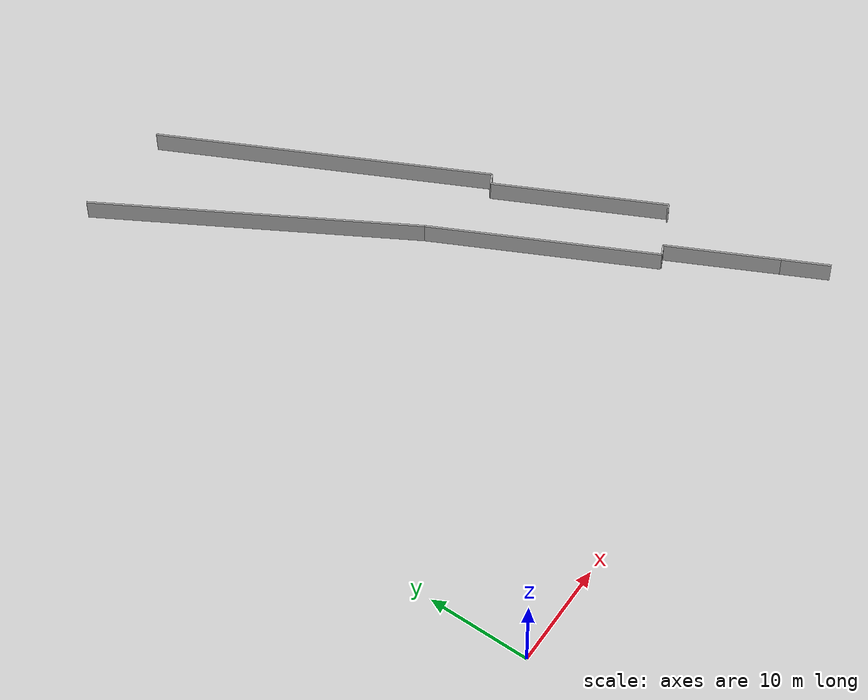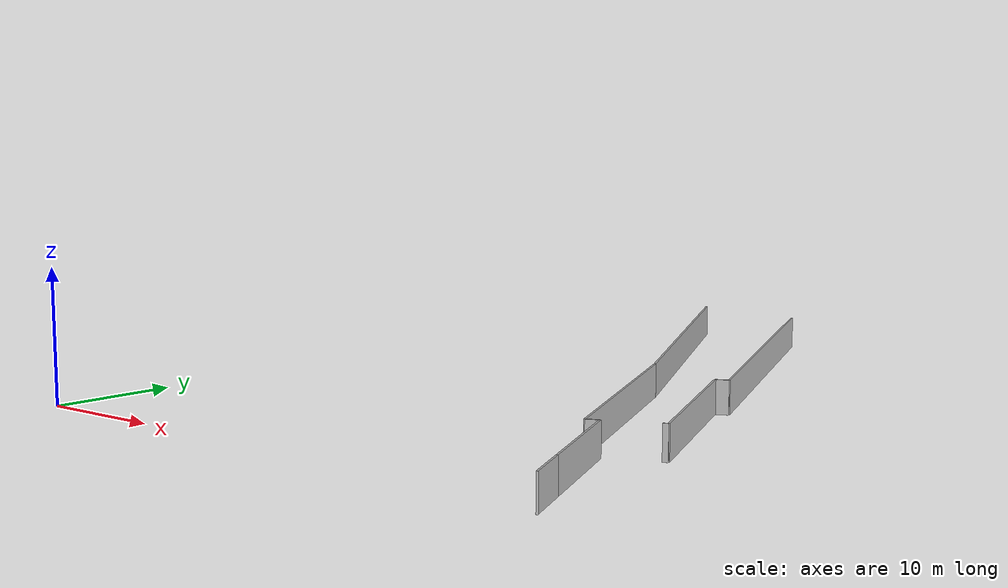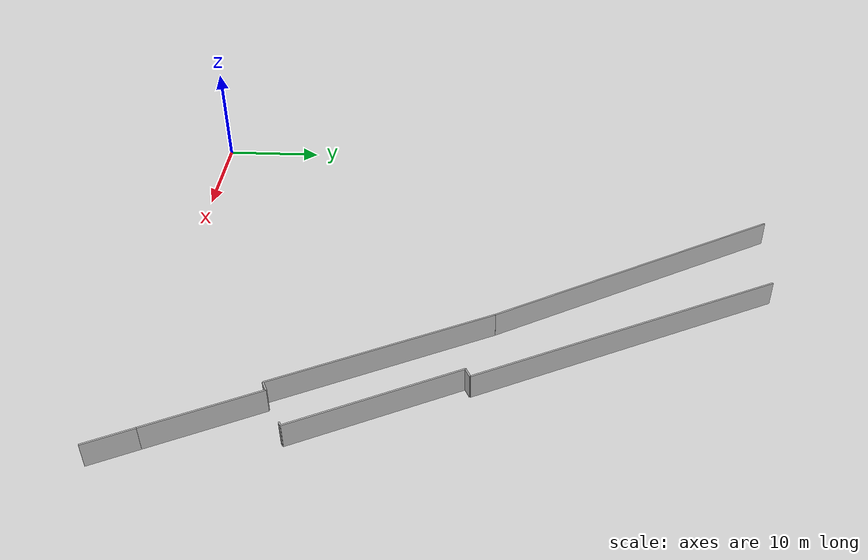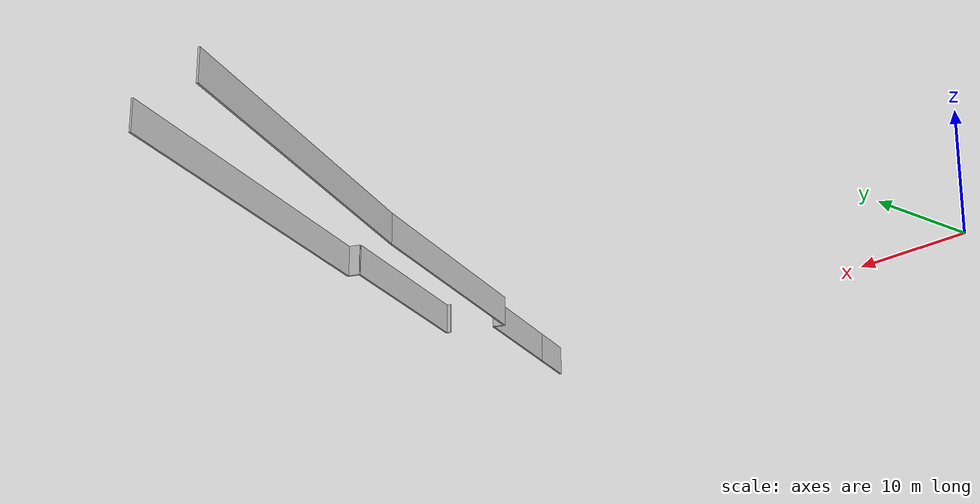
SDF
<?xml version="1.0" ?>
<sdf version="1.6">
  <model name="sps_0801">
    <pose frame="">0 0 0 0 -0 0</pose>
    <static>1</static>
    <self_collide>0</self_collide>
    <allow_auto_disable>0</allow_auto_disable>
    <link name="Wall1082">
      <kinematic>0</kinematic>
      <gravity>1</gravity>
      <self_collide>0</self_collide>
      <collision name="collision">
        <geometry>
          <box>
            <size>4.57327 0.15 2.5</size>
          </box>
        </geometry>
        <pose frame="">0 0 0 0 -0 0</pose>
      </collision>
      <visual name="visual">
        <geometry>
          <box>
            <size>4.57327 0.15 2.5</size>
          </box>
        </geometry>
        <pose frame="">0 0 0 0 -0 0</pose>
        <cast_shadows>1</cast_shadows>
        <transparency>0.0</transparency>
      </visual>
      <pose frame="">46.2042 0.322493 1.25 0 -0 2.02756</pose>
    </link>
    <link name="Wall1083">
      <kinematic>0</kinematic>
      <gravity>1</gravity>
      <self_collide>0</self_collide>
      <collision name="collision">
        <geometry>
          <box>
            <size>10.8125 0.15 2.5</size>
          </box>
        </geometry>
        <pose frame="">0 0 0 0 -0 0</pose>
      </collision>
      <visual name="visual">
        <geometry>
          <box>
            <size>10.8125 0.15 2.5</size>
          </box>
        </geometry>
        <pose frame="">0 0 0 0 -0 0</pose>
        <cast_shadows>1</cast_shadows>
        <transparency>0.0</transparency>
      </visual>
      <pose frame="">42.8105 7.22639 1.25 0 -0 2.0277</pose>
    </link>
    <link name="Wall1084">
      <kinematic>0</kinematic>
      <gravity>1</gravity>
      <self_collide>0</self_collide>
      <collision name="collision">
        <geometry>
          <box>
            <size>0.999428 0.15 2.5</size>
          </box>
        </geometry>
        <pose frame="">0 0 0 0 -0 0</pose>
      </collision>
      <visual name="visual">
        <geometry>
          <box>
            <size>0.999428 0.15 2.5</size>
          </box>
        </geometry>
        <pose frame="">0 0 0 0 -0 0</pose>
        <cast_shadows>1</cast_shadows>
        <transparency>0.0</transparency>
      </visual>
      <pose frame="">39.977 11.8575 1.25 0 0 -2.68442</pose>
    </link>
    <link name="Wall1085">
      <kinematic>0</kinematic>
      <gravity>1</gravity>
      <self_collide>0</self_collide>
      <collision name="collision">
        <geometry>
          <box>
            <size>21.8095 0.15 2.5</size>
          </box>
        </geometry>
        <pose frame="">0 0 0 0 -0 0</pose>
      </collision>
      <visual name="visual">
        <geometry>
          <box>
            <size>21.8095 0.15 2.5</size>
          </box>
        </geometry>
        <pose frame="">0 0 0 0 -0 0</pose>
        <cast_shadows>1</cast_shadows>
        <transparency>0.0</transparency>
      </visual>
      <pose frame="">34.7176 21.423 1.25 0 -0 2.02771</pose>
    </link>
    <link name="Wall1086">
      <kinematic>0</kinematic>
      <gravity>1</gravity>
      <self_collide>0</self_collide>
      <collision name="collision">
        <geometry>
          <box>
            <size>31.141 0.15 2.5</size>
          </box>
        </geometry>
        <pose frame="">0 0 0 0 -0 0</pose>
      </collision>
      <visual name="visual">
        <geometry>
          <box>
            <size>31.141 0.15 2.5</size>
          </box>
        </geometry>
        <pose frame="">0 0 0 0 -0 0</pose>
        <cast_shadows>1</cast_shadows>
        <transparency>0.0</transparency>
      </visual>
      <pose frame="">22.2425 44.7628 1.25 0 -0 2.08543</pose>
    </link>
    <link name="Wall1108">
      <kinematic>0</kinematic>
      <gravity>1</gravity>
      <self_collide>0</self_collide>
      <collision name="collision">
        <geometry>
          <box>
            <size>31.4311 0.15 2.5</size>
          </box>
        </geometry>
        <pose frame="">0 0 0 0 -0 0</pose>
      </collision>
      <visual name="visual">
        <geometry>
          <box>
            <size>31.4311 0.15 2.5</size>
          </box>
        </geometry>
        <pose frame="">0 0 0 0 -0 0</pose>
        <cast_shadows>1</cast_shadows>
        <transparency>0.0</transparency>
      </visual>
      <pose frame="">31.0781 43.336 1.25 0 0 -1.11389</pose>
    </link>
    <link name="Wall1109">
      <kinematic>0</kinematic>
      <gravity>1</gravity>
      <self_collide>0</self_collide>
      <collision name="collision">
        <geometry>
          <box>
            <size>1 0.15 2.5</size>
          </box>
        </geometry>
        <pose frame="">0 0 0 0 -0 0</pose>
      </collision>
      <visual name="visual">
        <geometry>
          <box>
            <size>1 0.15 2.5</size>
          </box>
        </geometry>
        <pose frame="">0 0 0 0 -0 0</pose>
        <cast_shadows>1</cast_shadows>
        <transparency>0.0</transparency>
      </visual>
      <pose frame="">37.5627 29.0119 1.25 0 0 -2.68463</pose>
    </link>
    <link name="Wall1110">
      <kinematic>0</kinematic>
      <gravity>1</gravity>
      <self_collide>0</self_collide>
      <collision name="collision">
        <geometry>
          <box>
            <size>16.4591 0.15 2.5</size>
          </box>
        </geometry>
        <pose frame="">0 0 0 0 -0 0</pose>
      </collision>
      <visual name="visual">
        <geometry>
          <box>
            <size>16.4591 0.15 2.5</size>
          </box>
        </geometry>
        <pose frame="">0 0 0 0 -0 0</pose>
        <cast_shadows>1</cast_shadows>
        <transparency>0.0</transparency>
      </visual>
      <pose frame="">40.7441 21.4056 1.25 0 0 -1.11397</pose>
    </link>
    <link name="Wall1111">
      <kinematic>0</kinematic>
      <gravity>1</gravity>
      <self_collide>0</self_collide>
      <collision name="collision">
        <geometry>
          <box>
            <size>0.399235 0.15 2.5</size>
          </box>
        </geometry>
        <pose frame="">0 0 0 0 -0 0</pose>
      </collision>
      <visual name="visual">
        <geometry>
          <box>
            <size>0.399235 0.15 2.5</size>
          </box>
        </geometry>
        <pose frame="">0 0 0 0 -0 0</pose>
        <cast_shadows>1</cast_shadows>
        <transparency>0.0</transparency>
      </visual>
      <pose frame="">44.1952 13.9317 1.25 0 0 -2.68396</pose>
    </link>
  </model>
</sdf>
